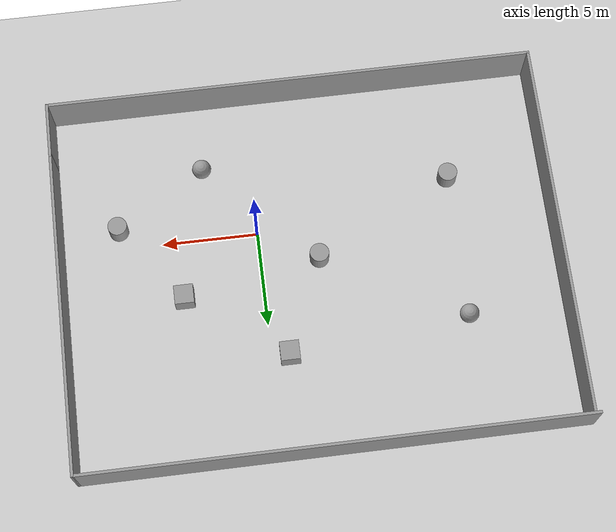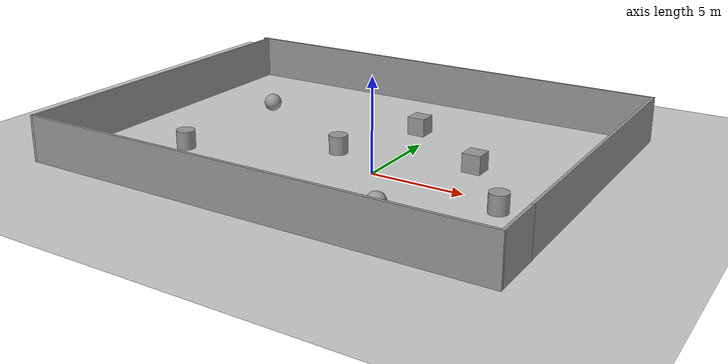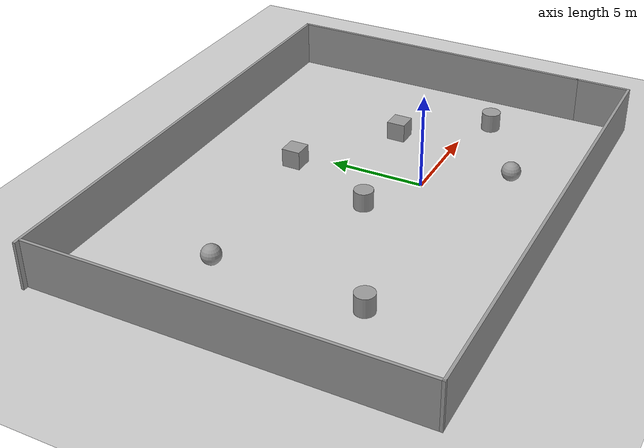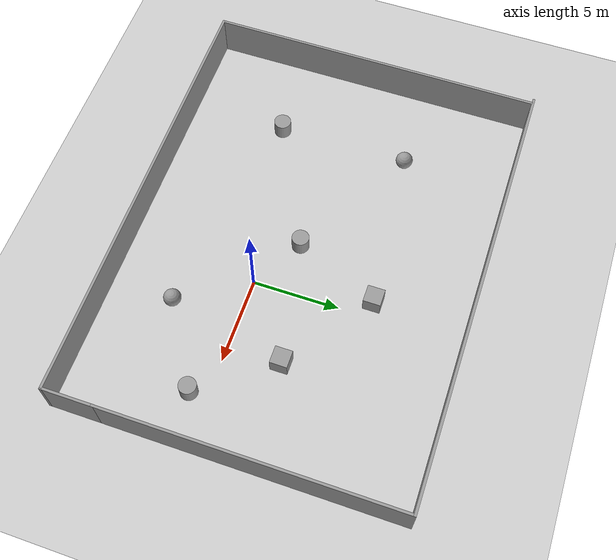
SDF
<sdf version="1.7">
 <world name="default">
  <light name="sun" type="directional">
   <pose>0 0 10 0 -0 0</pose>
   <diffuse>0.8 0.8 0.8 1</diffuse>
   <specular>0.2 0.2 0.2 1</specular>
   <attenuation>
    <range>1000</range>
    <constant>0.9</constant>
    <linear>0.01</linear>
    <quadratic>0.001</quadratic>
   </attenuation>
   <direction>-0.5 0.1 -0.9</direction>
   <spot><inner_angle>0</inner_angle><outer_angle>0</outer_angle><falloff>0</falloff></spot>
  </light>
  <model name="ground_plane">
   <static>1</static>
   <link name="link">
    <collision name="collision">
     <geometry><plane><normal>0 0 1</normal><size>100 100</size></plane></geometry>
     <surface><friction><ode><mu>100</mu><mu2>50</mu2></ode></friction></surface>
    </collision>
    <visual name="visual">
     <cast_shadows>0</cast_shadows>
     <geometry><plane><normal>0 0 1</normal><size>100 100</size></plane></geometry>
     <material>
      <script><uri>file://media/materials/scripts/gazebo.material</uri><name>Gazebo/Grey</name></script>
     </material>
    </visual>
   </link>
  </model>
  <gravity>0 0 -9.8</gravity>
  <magnetic_field>6e-06 2.3e-05 -4.2e-05</magnetic_field>
  <atmosphere type="adiabatic"/>
  <physics type="ode">
   <max_step_size>0.001</max_step_size>
   <real_time_factor>1</real_time_factor>
   <real_time_update_rate>1000</real_time_update_rate>
  </physics>
  <scene><ambient>0.4 0.4 0.4 1</ambient><background>0.7 0.7 0.7 1</background><shadows>1</shadows></scene>
  <spherical_coordinates>
   <surface_model>EARTH_WGS84</surface_model>
   <latitude_deg>0</latitude_deg>
   <longitude_deg>0</longitude_deg>
   <elevation>0</elevation>
   <heading_deg>0</heading_deg>
  </spherical_coordinates>
  <model name="unit_sphere">
   <pose>2.55379 -3.85215 0.5 0 -0 0</pose>
   <link name="link">
    <inertial>
     <mass>1</mass>
     <inertia><ixx>0.1</ixx><ixy>0</ixy><ixz>0</ixz><iyy>0.1</iyy><iyz>0</iyz><izz>0.1</izz></inertia>
    </inertial>
    <collision name="collision"><geometry><sphere><radius>0.5</radius></sphere></geometry></collision>
    <visual name="visual">
     <geometry><sphere><radius>0.5</radius></sphere></geometry>
     <material>
      <script><name>Gazebo/Grey</name><uri>file://media/materials/scripts/gazebo.material</uri></script>
     </material>
    </visual>
   </link>
  </model>
  <model name="unit_cylinder">
   <pose>7.21293 -1.0013 0.499998 3e-06 -3e-06 0</pose>
   <link name="link">
    <inertial>
     <mass>1</mass>
     <inertia><ixx>0.145833</ixx><ixy>0</ixy><ixz>0</ixz><iyy>0.145833</iyy><iyz>0</iyz><izz>0.125</izz></inertia>
    </inertial>
    <collision name="collision">
     <geometry><cylinder><radius>0.5</radius><length>1</length></cylinder></geometry>
    </collision>
    <visual name="visual">
     <geometry><cylinder><radius>0.5</radius><length>1</length></cylinder></geometry>
     <material>
      <script><name>Gazebo/Grey</name><uri>file://media/materials/scripts/gazebo.material</uri></script>
     </material>
    </visual>
   </link>
  </model>
  <model name="unit_box">
   <pose>4.11462 3.10922 0.499995 -1e-05 0 0</pose>
   <link name="link">
    <inertial>
     <mass>1</mass>
     <inertia>
      <ixx>0.166667</ixx>
      <ixy>0</ixy>
      <ixz>0</ixz>
      <iyy>0.166667</iyy>
      <iyz>0</iyz>
      <izz>0.166667</izz>
     </inertia>
    </inertial>
    <collision name="collision"><geometry><box><size>1 1 1</size></box></geometry></collision>
    <visual name="visual">
     <geometry><box><size>1 1 1</size></box></geometry>
     <material>
      <script><name>Gazebo/Grey</name><uri>file://media/materials/scripts/gazebo.material</uri></script>
     </material>
    </visual>
   </link>
  </model>
  <model name="unit_cylinder_0">
   <pose>-3.06904 1.7168 0.499998 3e-06 -4e-06 0</pose>
   <link name="link">
    <inertial>
     <mass>1</mass>
     <inertia><ixx>0.145833</ixx><ixy>0</ixy><ixz>0</ixz><iyy>0.145833</iyy><iyz>0</iyz><izz>0.125</izz></inertia>
    </inertial>
    <collision name="collision">
     <geometry><cylinder><radius>0.5</radius><length>1</length></cylinder></geometry>
    </collision>
    <visual name="visual">
     <geometry><cylinder><radius>0.5</radius><length>1</length></cylinder></geometry>
     <material>
      <script><name>Gazebo/Grey</name><uri>file://media/materials/scripts/gazebo.material</uri></script>
     </material>
    </visual>
   </link>
  </model>
  <model name="house">
   <pose>-2.70375 2.24017 0 0 -0 0</pose>
   <link name="Wall_2">
    <collision name="Wall_2_Collision">
     <geometry><box><size>26 0.15 2.5</size></box></geometry>
     <pose>0 0 1.25 0 -0 0</pose>
    </collision>
    <visual name="Wall_2_Visual">
     <pose>0 0 1.25 0 -0 0</pose>
     <geometry><box><size>26 0.15 2.5</size></box></geometry>
     <material>
      <script><uri>file://media/materials/scripts/gazebo.material</uri><name>Gazebo/Grey</name></script>
      <ambient>1 1 1 1</ambient>
     </material>
     <meta><layer>0</layer></meta>
    </visual>
    <pose>-0 9.85 0 0 -0 0</pose>
   </link>
   <link name="Wall_3">
    <collision name="Wall_3_Collision">
     <geometry><box><size>17 0.15 2.5</size></box></geometry>
     <pose>0 0 1.25 0 -0 0</pose>
    </collision>
    <visual name="Wall_3_Visual">
     <pose>0 0 1.25 0 -0 0</pose>
     <geometry><box><size>17 0.15 2.5</size></box></geometry>
     <material>
      <script><uri>file://media/materials/scripts/gazebo.material</uri><name>Gazebo/Grey</name></script>
      <ambient>1 1 1 1</ambient>
     </material>
     <meta><layer>0</layer></meta>
    </visual>
    <pose>12.925 1.425 0 0 -0 -1.5708</pose>
   </link>
   <link name="Wall_4">
    <collision name="Wall_4_Collision">
     <geometry><box><size>3 0.15 2.5</size></box></geometry>
     <pose>0 0 1.25 0 -0 0</pose>
    </collision>
    <visual name="Wall_4_Visual">
     <pose>0 0 1.25 0 -0 0</pose>
     <geometry><box><size>3 0.15 2.5</size></box></geometry>
     <material>
      <script><uri>file://media/materials/scripts/gazebo.material</uri><name>Gazebo/Grey</name></script>
      <ambient>1 1 1 1</ambient>
     </material>
     <meta><layer>0</layer></meta>
    </visual>
    <pose>12.925 -8.425 0 0 -0 -1.5708</pose>
   </link>
   <link name="Wall_5">
    <collision name="Wall_5_Collision">
     <geometry><box><size>25.75 0.15 2.5</size></box></geometry>
     <pose>0 0 1.25 0 -0 0</pose>
    </collision>
    <visual name="Wall_5_Visual">
     <pose>0 0 1.25 0 -0 0</pose>
     <geometry><box><size>25.75 0.15 2.5</size></box></geometry>
     <material>
      <script><uri>file://media/materials/scripts/gazebo.material</uri><name>Gazebo/Grey</name></script>
      <ambient>1 1 1 1</ambient>
     </material>
     <meta><layer>0</layer></meta>
    </visual>
    <pose>0.125 -9.85 0 0 -0 3.14159</pose>
   </link>
   <link name="Wall_6">
    <collision name="Wall_6_Collision">
     <geometry><box><size>19.75 0.15 2.5</size></box></geometry>
     <pose>0 0 1.25 0 -0 0</pose>
    </collision>
    <visual name="Wall_6_Visual">
     <pose>0 0 1.25 0 -0 0</pose>
     <geometry><box><size>19.75 0.15 2.5</size></box></geometry>
     <material>
      <script><uri>file://media/materials/scripts/gazebo.material</uri><name>Gazebo/Grey</name></script>
      <ambient>1 1 1 1</ambient>
     </material>
     <meta><layer>0</layer></meta>
    </visual>
    <pose>-12.675 -0.05 0 0 -0 1.5708</pose>
   </link>
   <static>1</static>
  </model>
  <model name="unit_cylinder_1">
   <pose>-10.3392 -1.94122 0.499997 3e-06 4e-06 -0</pose>
   <link name="link">
    <inertial>
     <mass>1</mass>
     <inertia><ixx>0.145833</ixx><ixy>0</ixy><ixz>0</ixz><iyy>0.145833</iyy><iyz>0</iyz><izz>0.125</izz></inertia>
    </inertial>
    <collision name="collision">
     <geometry><cylinder><radius>0.5</radius><length>1</length></cylinder></geometry>
    </collision>
    <visual name="visual">
     <geometry><cylinder><radius>0.5</radius><length>1</length></cylinder></geometry>
     <material>
      <script><name>Gazebo/Grey</name><uri>file://media/materials/scripts/gazebo.material</uri></script>
     </material>
    </visual>
   </link>
  </model>
  <model name="unit_sphere_0">
   <pose>-10.3462 5.77057 0.5 0 -0 0</pose>
   <link name="link">
    <inertial>
     <mass>1</mass>
     <inertia><ixx>0.1</ixx><ixy>0</ixy><ixz>0</ixz><iyy>0.1</iyy><iyz>0</iyz><izz>0.1</izz></inertia>
    </inertial>
    <collision name="collision"><geometry><sphere><radius>0.5</radius></sphere></geometry></collision>
    <visual name="visual">
     <geometry><sphere><radius>0.5</radius></sphere></geometry>
     <material>
      <script><name>Gazebo/Grey</name><uri>file://media/materials/scripts/gazebo.material</uri></script>
     </material>
    </visual>
   </link>
  </model>
  <model name="unit_box_0">
   <pose>-0.940149 6.73397 0.5 0 -0 0</pose>
   <link name="link">
    <inertial>
     <mass>1</mass>
     <inertia>
      <ixx>0.166667</ixx>
      <ixy>0</ixy>
      <ixz>0</ixz>
      <iyy>0.166667</iyy>
      <iyz>0</iyz>
      <izz>0.166667</izz>
     </inertia>
    </inertial>
    <collision name="collision"><geometry><box><size>1 1 1</size></box></geometry></collision>
    <visual name="visual">
     <geometry><box><size>1 1 1</size></box></geometry>
     <material>
      <script><name>Gazebo/Grey</name><uri>file://media/materials/scripts/gazebo.material</uri></script>
     </material>
    </visual>
   </link>
  </model>
 </world>
</sdf>
